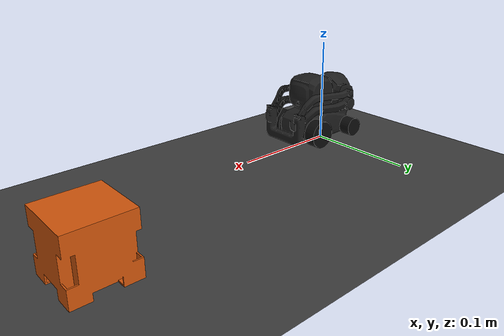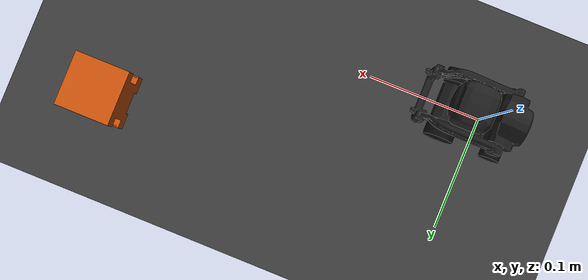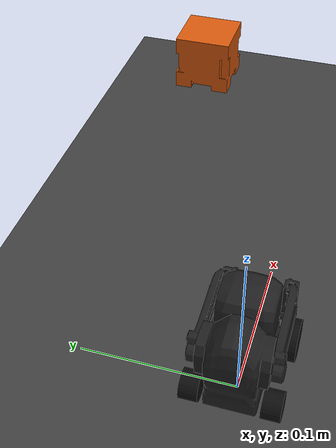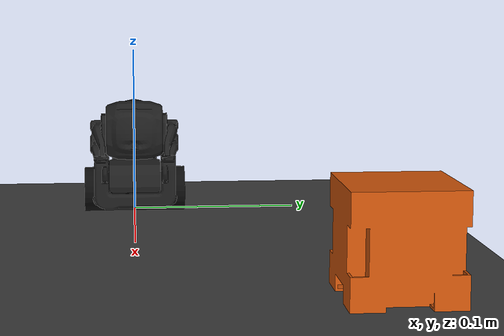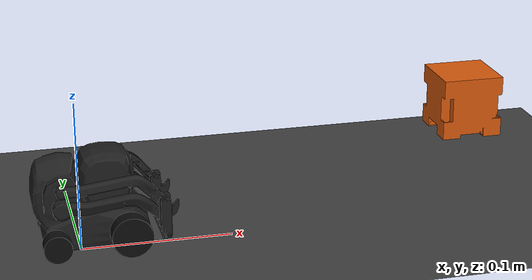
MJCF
<mujoco model="cozmo_real">
  <compiler angle="radian" meshdir="meshes" autolimits="true" inertiafromgeom="true"/>
  <option timestep="0.001" gravity="0 0 -9.81"/>
  <visual>
    <global offwidth="1280" offheight="960"/>
  </visual>

  <default>
    <joint damping="0.02" armature="0.0005"/>
  </default>

  <asset>
    <mesh name="body3" content_type="model/obj" file="body3.obj"/>
    <mesh name="cozmo_head" content_type="model/obj" file="cozmo_head.obj"/>
    <mesh name="left_upper_arm" content_type="model/obj" file="left_upper_arm.obj" scale="0.001 0.001 0.001"/>
    <mesh name="right_upper_arm" content_type="model/obj" file="right_upper_arm.obj" scale="0.001 0.001 0.001"/>
    <mesh name="left_lower_arm" content_type="model/obj" file="left_lower_arm.obj" scale="0.001 0.001 0.001"/>
    <mesh name="right_lower_arm" content_type="model/obj" file="right_lower_arm.obj" scale="0.001 0.001 0.001"/>
    <mesh name="fork" content_type="model/obj" file="fork.obj" scale="0.001 0.001 0.001"/>
    <mesh name="cube" content_type="model/obj" file="cube.obj" scale="0.001 0.001 0.001"/>

    <texture name="grid" type="2d" builtin="checker" rgb1="0.2 0.2 0.2" rgb2="0.3 0.3 0.3" width="512" height="512"/>

    <material name="grid_mat" texture="grid" texrepeat="20 20" reflectance="0.1"/>
    <material name="body_mat" rgba="0.12 0.12 0.12 1"/>
    <material name="wheel_mat" rgba="0.05 0.05 0.05 1"/>
    <material name="cube_mat" rgba="0.85 0.35 0.05 1"/>
  </asset>

  <worldbody>
    <light pos="0 0 1.5" dir="0 0 -1" diffuse="0.9 0.9 0.9"/>
    <geom name="floor" type="plane" size="2 2 0.1" material="grid_mat"/>

    <!-- Cozmo -->
    <body name="cozmo" pos="0 0 0.03">
      <freejoint name="root"/>

      <!-- Chassis -->
      <geom name="chassis" type="mesh" mesh="body3" material="body_mat" mass="0.06" contype="2" conaffinity="1"/>

      <!-- Head -->
      <body name="head" pos="0.0174507 0 0.022003">
        <joint name="base_to_head" pos="0 0 0" axis="0 -1 0" range="-0.44 0.78" damping="0.05"/>
        <geom type="mesh" mesh="cozmo_head" material="body_mat" mass="0.01" contype="2" conaffinity="1"/>
        <camera name="cozmo_cam" pos="0.020813 0 -0.0071471" quat="0.5 0.5 -0.5 -0.5" fovy="45"/>
      </body>

      <!-- Lift arms -->
      <body name="right_upper_arm" pos="0 0 -0.023">
        <joint name="right_upper_arm_joint" pos="-0.0130 -0.0223 0.0443" axis="0 -1 0" damping="0.05"/>
        <geom type="mesh" mesh="right_upper_arm" material="body_mat" mass="0.0015" contype="2" conaffinity="1"/>
      </body>

      <body name="left_upper_arm" pos="0 0 -0.023">
        <joint name="left_upper_arm_joint" pos="-0.0130 0.0223 0.0443" axis="0 -1 0" damping="0.05"/>
        <geom type="mesh" mesh="left_upper_arm" pos="0 0 -0.001443" material="body_mat" mass="0.0015" contype="2" conaffinity="1"/>
      </body>

      <body name="right_lower_arm" pos="0 0 -0.023">
        <joint name="right_lower_arm_joint" pos="-0.0130 -0.0225 0.0320" axis="0 -1 0" range="-0.04 0.79" limited="true" solreflimit="0.005 1" solimplimit="0.95 0.99 0.001" damping="0.02"/>
        <geom type="mesh" mesh="right_lower_arm" material="body_mat" mass="0.0015" contype="2" conaffinity="1"/>

        <!-- Fork -->
        <body name="fork" pos="0 0 0">
          <joint name="right_lower_pivot" pos="0.0515 -0.0192 0.0182" axis="0 -1 0" damping="0.02"/>
          <geom type="mesh" mesh="fork" material="body_mat" mass="0.009" contype="2" conaffinity="1"/>
        </body>
      </body>

      <body name="left_lower_arm" pos="0 0 -0.023">
        <joint name="left_lower_arm_joint" pos="-0.0130 0.0225 0.0320" axis="0 -1 0" range="-0.04 0.79" limited="true" solreflimit="0.005 1" solimplimit="0.95 0.99 0.001" damping="0.02"/>
        <geom type="mesh" mesh="left_lower_arm" pos="0 0 -0.001072" material="body_mat" mass="0.0015" contype="2" conaffinity="1"/>
      </body>

      <!-- Wheels -->
      <body name="front_left_wheel" pos="0.03 0.024 -0.012" quat="0.707107 -0.707107 0 0">
        <joint name="front_left_wheel_joint" pos="0 0 0" axis="0 0 1"/>
        <geom size="0.01314 0.00583695" type="cylinder" material="wheel_mat" friction="1.3 0.005 0.0001" mass="0.01" contype="2" conaffinity="1"/>
      </body>

      <body name="front_right_wheel" pos="0.03 -0.024 -0.012" quat="0.707107 -0.707107 0 0">
        <joint name="front_right_wheel_joint" pos="0 0 0" axis="0 0 1"/>
        <geom size="0.01314 0.00583695" type="cylinder" material="wheel_mat" friction="1.3 0.005 0.0001" mass="0.01" contype="2" conaffinity="1"/>
      </body>

      <body name="rear_left_wheel" pos="-0.017 0.024 -0.0151707" quat="0.707107 -0.707107 0 0">
        <joint name="rear_left_wheel_joint" pos="0 0 0" axis="0 0 1"/>
        <geom size="0.008995 0.00583695" type="cylinder" material="wheel_mat" friction="1.3 0.005 0.0001" mass="0.01" contype="2" conaffinity="1"/>
      </body>

      <body name="rear_right_wheel" pos="-0.017 -0.024 -0.0151707" quat="0.707107 -0.707107 0 0">
        <joint name="rear_right_wheel_joint" pos="0 0 0" axis="0 0 1"/>
        <geom size="0.008995 0.00583695" type="cylinder" material="wheel_mat" friction="1.3 0.005 0.0001" mass="0.01" contype="2" conaffinity="1"/>
      </body>
    </body>

    <!-- Cozmo cube -->
    <body name="target_cube" pos="0.3 0.1 0.022">
      <freejoint name="cube_free"/>
      <geom name="cube_geom" type="mesh" mesh="cube" material="cube_mat" friction="0.8 0.005 0.0001"  mass="0.05"/>
    </body>
  </worldbody>

  <equality>
    <!-- Belt coupling of rear and front wheels, joint1 = 1.4608 * joint2 -->
    <joint joint1="rear_left_wheel_joint" joint2="front_left_wheel_joint" polycoef="0 1.46081156198 0 0 0" solref="0.01 1" solimp="0.9 0.95 0.001"/>
    <joint joint1="rear_right_wheel_joint" joint2="front_right_wheel_joint" polycoef="0 1.46081156198 0 0 0" solref="0.01 1" solimp="0.9 0.95 0.001"/>

    <!-- Fork pivots -->
    <connect name="right_upper_pivot" body1="fork" body2="right_upper_arm" anchor="0.0515 -0.0190 0.0305" solref="0.002 1" solimp="0.999 0.9999 0.00001"/>
    <connect name="left_upper_pivot" body1="fork" body2="left_upper_arm" anchor="0.0515 0.0190 0.0305" solref="0.002 1" solimp="0.999 0.9999 0.00001"/>
    <connect name="left_lower_pivot" body1="fork" body2="left_lower_arm" anchor="0.0515 0.0192 0.0182" solref="0.002 1" solimp="0.999 0.9999 0.00001"/>
  </equality>

  <actuator>
    <velocity name="left_front_motor" joint="front_left_wheel_joint" ctrlrange="-15.22 15.22" kv="1.0"/>
    <velocity name="right_front_motor" joint="front_right_wheel_joint" ctrlrange="-15.22 15.22" kv="1.0"/>
    <position name="head_motor" joint="base_to_head" ctrlrange="-0.44 0.78" kp="1"/>
    <position name="lift_motor" joint="right_lower_arm_joint" ctrlrange="-0.20 0.79" kp="1"/>
  </actuator>
</mujoco>
